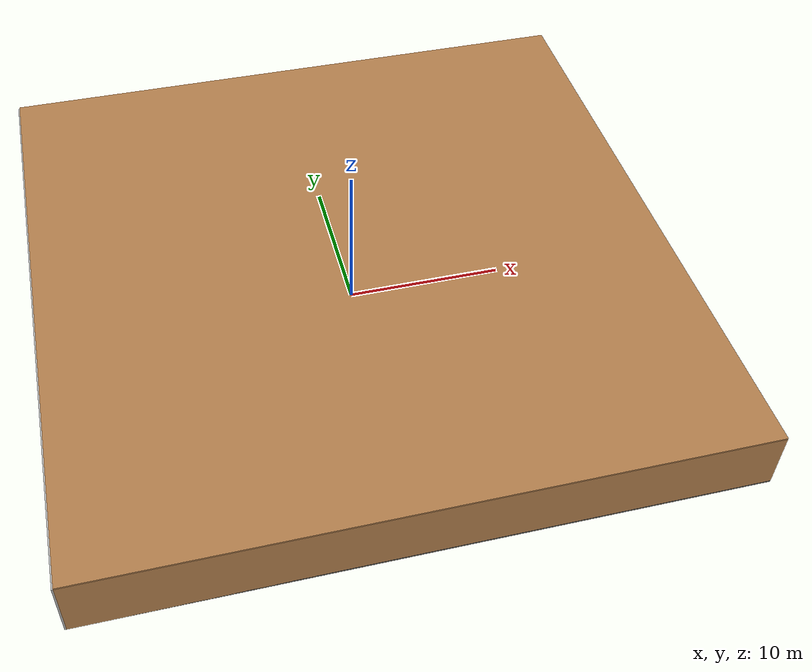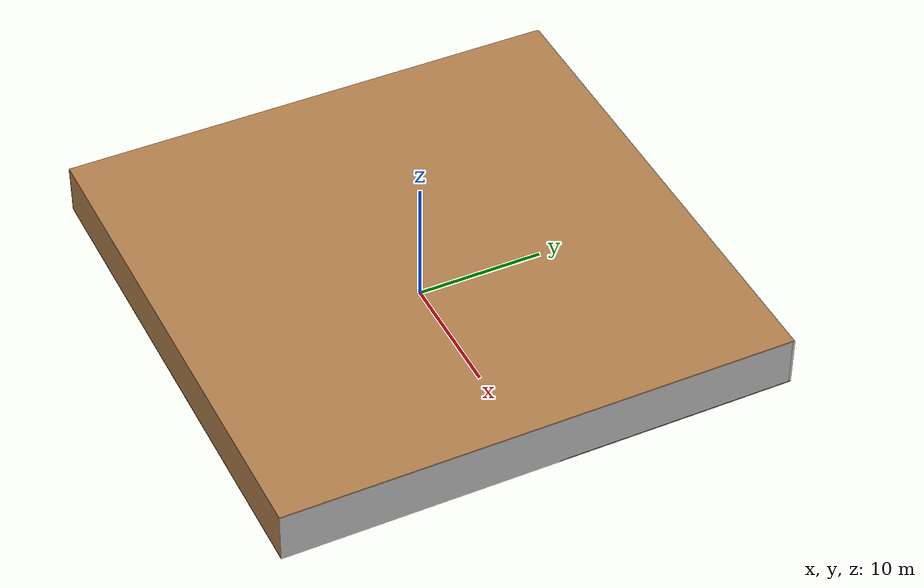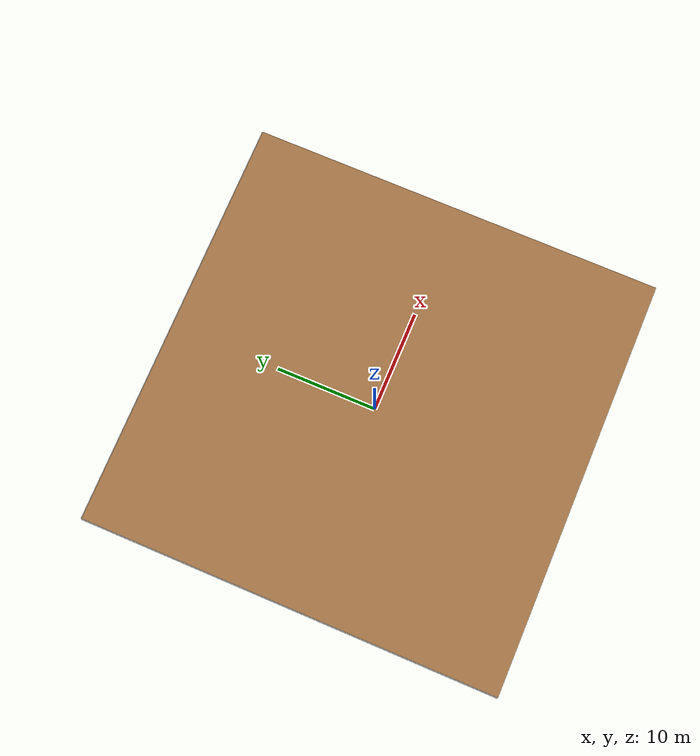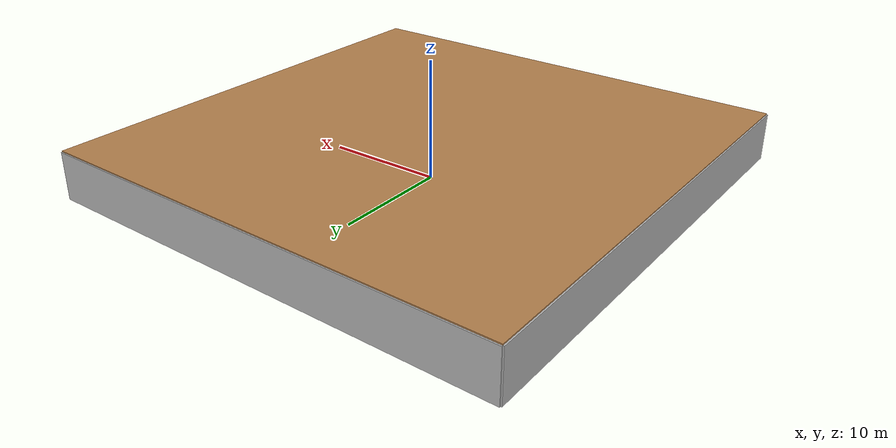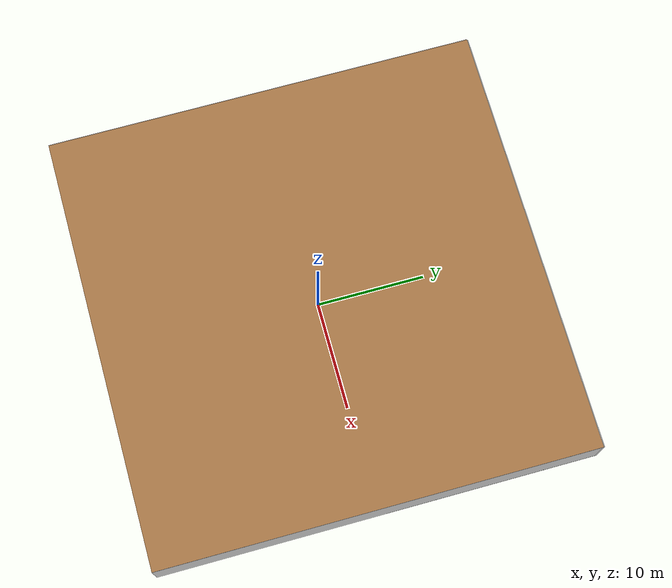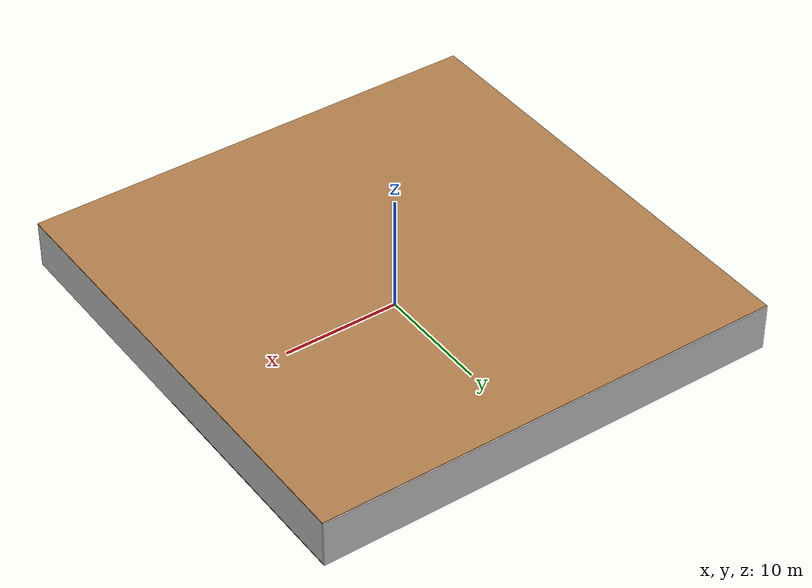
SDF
<sdf version="1.4">
 <world name="default">
  <physics type="ode">
   <max_step_size>0.001</max_step_size>
   <real_time_factor>1</real_time_factor>
   <real_time_update_rate>1000</real_time_update_rate>
   <gravity>0 0 -9.8</gravity>
  </physics>
  <scene><ambient>0.4 0.4 0.4 1</ambient><background>0.7 0.7 0.7 1</background><shadows>1</shadows></scene>
  <model name="Surrounding">
   <static>1</static>
   <link name="Ceiling">
    <collision name="Ceiling_Collision"><geometry><box><size>40 40 0.1</size></box></geometry></collision>
    <visual name="Ceiling_Visual">
     <geometry><box><size>40 40 0.1</size></box></geometry>
     <material>
      <script><uri>file://media/materials/scripts/gazebo.material</uri><name>Gazebo/WoodPallet</name></script>
     </material>
    </visual>
    <pose>0 0 4.05 0 0 0</pose>
   </link>
   <link name="Wall_South">
    <collision name="Wall_South_Collision">
     <geometry><box><size>40 0 4</size></box></geometry>
     <pose>0 0 2 0 -0 0</pose>
    </collision>
    <visual name="Wall_South_Visual">
     <pose>0 0 2 0 -0 0</pose>
     <geometry><box><size>40 0 4</size></box></geometry>
     <material>
      <script><uri>file://media/materials/scripts/gazebo.material</uri><name>Gazebo/WoodPallet</name></script>
     </material>
    </visual>
    <velocity_decay><linear>0</linear><angular>0</angular></velocity_decay>
    <pose>0 -20 0 0 -0 0</pose>
   </link>
   <link name="Wall_East">
    <collision name="Wall_21_Collision">
     <geometry><box><size>40 0 4</size></box></geometry>
     <pose>0 0 2 0 -0 0</pose>
    </collision>
    <visual name="Wall_21_Visual">
     <pose>0 0 2 0 -0 0</pose>
     <geometry><box><size>40 0 4</size></box></geometry>
     <material>
      <script><uri>file://media/materials/scripts/gazebo.material</uri><name>Gazebo/Pioneer2Body</name></script>
     </material>
    </visual>
    <velocity_decay><linear>0</linear><angular>0</angular></velocity_decay>
    <pose>20 0 0 0 -0 1.5708</pose>
   </link>
   <link name="Wall_North">
    <collision name="Wall_22_Collision">
     <geometry><box><size>40 0.2 4</size></box></geometry>
     <pose>0 0 2 0 -0 0</pose>
    </collision>
    <visual name="Wall_22_Visual">
     <pose>0 0 2 0 -0 0</pose>
     <geometry><box><size>40 0.2 4</size></box></geometry>
     <material>
      <script><uri>file://media/materials/scripts/gazebo.material</uri><name>Gazebo/LightOff</name></script>
     </material>
    </visual>
    <velocity_decay><linear>0</linear><angular>0</angular></velocity_decay>
    <pose>0 20 0 0 -0 0</pose>
   </link>
   <link name="Wall_West">
    <collision name="Wall_23_Collision">
     <geometry><box><size>40 0.2 4</size></box></geometry>
     <pose>0 0 2 0 -0 0</pose>
    </collision>
    <visual name="Wall_23_Visual">
     <pose>0 0 2 0 -0 0</pose>
     <geometry><box><size>40 0.2 4</size></box></geometry>
     <material>
      <script><uri>file://media/materials/scripts/gazebo.material</uri><name>Gazebo/LightOff</name></script>
     </material>
    </visual>
    <velocity_decay><linear>0</linear><angular>0</angular></velocity_decay>
    <pose>-20 0 0 0 0 -1.5708</pose>
   </link>
   <link name="Ground_link">
    <collision name="collision">
     <pose>0 0 .05 0 -0 0</pose>
     <geometry><box><size>40 40 0.1</size></box></geometry>
    </collision>
    <visual name="visual">
     <pose>0 0 .05 0 -0 0</pose>
     <geometry><box><size>40 40 0.1</size></box></geometry>
     <material>
      <script><uri>file://media/materials/scripts/gazebo.material</uri><name>Gazebo/Road</name></script>
     </material>
    </visual>
   </link>
   <static>1</static>
  </model>
  <spherical_coordinates>
   <surface_model>EARTH_WGS84</surface_model>
   <latitude_deg>0</latitude_deg>
   <longitude_deg>0</longitude_deg>
   <elevation>0</elevation>
   <heading_deg>0</heading_deg>
  </spherical_coordinates>
  <light name="lightball_0" type="diffuse">
   <diffuse>0.8 0.8 0.8 1</diffuse>
   <specular>0.2 0.2 0.2 1</specular>
   <attenuation>
    <range>100</range>
    <constant>0.7</constant>
    <linear>0.01</linear>
    <quadratic>0.001</quadratic>
   </attenuation>
   <direction>-0.5 0.1 -0.9</direction>
   <pose>13.7362860924 2.438480242 1.98199401209 0 0 0</pose>
  </light>
  <light name="lightball_1" type="diffuse">
   <diffuse>0.8 0.8 0.8 1</diffuse>
   <specular>0.2 0.2 0.2 1</specular>
   <attenuation>
    <range>100</range>
    <constant>0.7</constant>
    <linear>0.01</linear>
    <quadratic>0.001</quadratic>
   </attenuation>
   <direction>-0.5 0.1 -0.9</direction>
   <pose>17.3346230385 -18.2512976138 1.92184270783 0 0 0</pose>
  </light>
  <include><uri>model://table</uri><pose>-13.7797324805 19.2967787378 0 0 0 2.39983224602</pose></include>
  <include><uri>model://cabinet</uri><pose>-11.3679043386 -14.7818977476 0 0 0 1.80688407234</pose></include>
  <include>
   <uri>model://robocup_3Dsim_goal</uri>
   <pose>-8.56909345507 -4.36867207884 0 0 0 2.09779322355</pose>
  </include>
  <include><uri>model://cabinet</uri><pose>-7.43230294368 -0.343106977643 0 0 0 1.02237192218</pose></include>
  <include>
   <uri>model://construction_cone</uri>
   <pose>-7.58914024474 10.6091462127 0 0 0 1.30145496903</pose>
  </include>
  <include><uri>model://cabinet</uri><pose>-7.46205440401 17.3929085109 0 0 0 2.15742592135</pose></include>
  <include>
   <uri>model://construction_cone</uri>
   <pose>-6.6235727073 0.7934853583 0 0 0 2.12858393344</pose>
  </include>
  <include><uri>model://cabinet</uri><pose>-4.62442915855 4.60195639867 0 0 0 2.71167786212</pose></include>
  <include>
   <uri>model://textured_shapes</uri>
   <pose>-5.94890254629 12.6594764534 0 0 0 3.08916086672</pose>
  </include>
  <include>
   <uri>model://textured_shapes</uri>
   <pose>-3.61805097309 13.4796866425 0 0 0 0.337445813497</pose>
  </include>
  <include><uri>model://cabinet</uri><pose>-2.46843265036 17.9930644091 0 0 0 0.016889917414</pose></include>
  <include>
   <uri>model://robocup_3Dsim_goal</uri>
   <pose>0.0186078564937 -18.6516064076 0 0 0 1.07969239586</pose>
  </include>
  <include><uri>model://table</uri><pose>1.60749969463 -12.5823826139 0 0 0 1.95510751022</pose></include>
  <include>
   <uri>model://construction_cone</uri>
   <pose>0.538064228723 -5.77763878847 0 0 0 2.94269340269</pose>
  </include>
  <include><uri>model://cabinet</uri><pose>1.29490853367 14.5928461806 0 0 0 0.0489377224463</pose></include>
  <include>
   <uri>model://construction_cone</uri>
   <pose>2.34933445565 8.73137225546 0 0 0 2.29549870442</pose>
  </include>
  <include>
   <uri>model://robocup_3Dsim_goal</uri>
   <pose>7.69046050086 -5.99850102706 0 0 0 0.538223012101</pose>
  </include>
  <include><uri>model://table</uri><pose>7.37088615904 -3.28169884888 0 0 0 1.05623631184</pose></include>
  <include><uri>model://cabinet</uri><pose>8.64914723619 6.83378427899 0 0 0 0.922336224399</pose></include>
  <include>
   <uri>model://construction_cone</uri>
   <pose>15.1387512926 -4.90210265031 0 0 0 1.91990058914</pose>
  </include>
  <include>
   <uri>model://robocup_3Dsim_goal</uri>
   <pose>18.2639037612 -16.6835143359 0 0 0 1.00711219207</pose>
  </include>
  <include><uri>model://cabinet</uri><pose>17.9796559524 4.22796409295 0 0 0 2.26400450582</pose></include>
 </world>
</sdf>

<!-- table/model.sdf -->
<sdf version="1.5">
  <model name="table">
    <static>true</static>
    <link name="link">
      <collision name="surface">
        <pose>0 0 1.0 0 0 0</pose>
        <geometry>
          <box>
            <size>1.5 0.8 0.03</size>
          </box>
        </geometry>
        <surface>
          <friction>
            <ode>
              <mu>0.6</mu>
              <mu2>0.6</mu2>
            </ode>
          </friction>
        </surface>
      </collision>
      <visual name="visual1">
        <pose>0 0 1.0 0 0 0</pose>
        <geometry>
          <box>
            <size>1.5 0.8 0.03</size>
          </box>
        </geometry>
        <material>
          <script>
            <uri>model://media/materials/scripts/gazebo.material</uri>
            <name>Gazebo/Wood</name>
          </script>
        </material>
      </visual>
      <collision name="front_left_leg">
        <pose>0.68 0.38 0.5 0 0 0</pose>
        <geometry>
          <cylinder>
            <radius>0.02</radius>
            <length>1.0</length>
          </cylinder>
        </geometry>
      </collision>
      <visual name="front_left_leg">
        <pose>0.68 0.38 0.5 0 0 0</pose>
        <geometry>
          <cylinder>
            <radius>0.02</radius>
            <length>1.0</length>
          </cylinder>
        </geometry>
        <material>
          <script>
            <uri>model://media/materials/scripts/gazebo.material</uri>
            <name>Gazebo/Grey</name>
          </script>
        </material>
      </visual>
      <collision name="front_right_leg">
        <pose>0.68 -0.38 0.5 0 0 0</pose>
        <geometry>
          <cylinder>
            <radius>0.02</radius>
            <length>1.0</length>
          </cylinder>
        </geometry>
      </collision>
      <visual name="front_right_leg">
        <pose>0.68 -0.38 0.5 0 0 0</pose>
        <geometry>
          <cylinder>
            <radius>0.02</radius>
            <length>1.0</length>
          </cylinder>
        </geometry>
        <material>
          <script>
            <uri>model://media/materials/scripts/gazebo.material</uri>
            <name>Gazebo/Grey</name>
          </script>
        </material>
      </visual>
      <collision name="back_right_leg">
        <pose>-0.68 -0.38 0.5 0 0 0</pose>
        <geometry>
          <cylinder>
            <radius>0.02</radius>
            <length>1.0</length>
          </cylinder>
        </geometry>
      </collision>
      <visual name="back_right_leg">
        <pose>-0.68 -0.38 0.5 0 0 0</pose>
        <geometry>
          <cylinder>
            <radius>0.02</radius>
            <length>1.0</length>
          </cylinder>
        </geometry>
        <material>
          <script>
            <uri>model://media/materials/scripts/gazebo.material</uri>
            <name>Gazebo/Grey</name>
          </script>
        </material>
      </visual>
      <collision name="back_left_leg">
        <pose>-0.68 0.38 0.5 0 0 0</pose>
        <geometry>
          <cylinder>
            <radius>0.02</radius>
            <length>1.0</length>
          </cylinder>
        </geometry>
      </collision>
      <visual name="back_left_leg">
        <pose>-0.68 0.38 0.5 0 0 0</pose>
        <geometry>
          <cylinder>
            <radius>0.02</radius>
            <length>1.0</length>
          </cylinder>
        </geometry>
        <material>
          <script>
            <uri>model://media/materials/scripts/gazebo.material</uri>
            <name>Gazebo/Grey</name>
          </script>
        </material>
      </visual>
    </link>
  </model>
</sdf>

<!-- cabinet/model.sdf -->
<sdf version="1.5">
  <model name="cabinet">
    <static>true</static>
    <link name="cabinet_bottom_plate">
      <inertial>
        <pose>0 0 -1 0 0 0</pose>
        <inertia>
          <ixx>2.050000</ixx>
          <ixy>0</ixy>
          <ixz>0</ixz>
          <iyy>2.050000</iyy>
          <iyz>0</iyz>
          <izz>2.050000</izz>
        </inertia>
        <mass>25.000000</mass>
      </inertial>
      <collision name="cabinet_bottom_plate_geom">
        <pose>0 0 0.010000 0 0 0</pose>
        <geometry>
          <box>
            <size>0.450000 0.450000 0.020000</size>
          </box>
        </geometry>
      </collision>
      <visual name="cabinet_bottom_plate_geom_visual">
        <pose>0 0 0.010000 0 0 0</pose>
        <geometry>
          <box>
            <size>0.450000 0.450000 0.020000</size>
          </box>
        </geometry>
        <material>
          <script>
            <uri>model://media/materials/scripts/gazebo.material</uri>
            <name>Gazebo/Wood</name>
          </script>
        </material>
      </visual>
      <collision name="cabinet_bottom_plate_geom_cabinet_back_plate">
        <pose>0.235000 0 0.510000 0 0 0</pose>
        <geometry>
          <box>
            <size>0.020000 0.450000 1.020000</size>
          </box>
        </geometry>
      </collision>
      <visual name="cabinet_bottom_plate_geom_cabinet_back_plate_visual">
        <pose>0.235000 0 0.510000 0 0 0</pose>
        <geometry>
          <box>
            <size>0.020000 0.450000 1.020000</size>
          </box>
        </geometry>
        <material>
          <script>
            <uri>model://media/materials/scripts/gazebo.material</uri>
            <name>Gazebo/Wood</name>
          </script>
        </material>
      </visual>
      <collision name="cabinet_bottom_plate_geom_cabinet_left_plate">
        <pose>0 0.235000 0.510000 0 0 0</pose>
        <geometry>
          <box>
            <size>0.450000 0.020000 1.020000</size>
          </box>
        </geometry>
      </collision>
      <visual name="cabinet_bottom_plate_geom_cabinet_left_plate_visual">
        <pose>0 0.235000 0.510000 0 0 0</pose>
        <geometry>
          <box>
            <size>0.450000 0.020000 1.020000</size>
          </box>
        </geometry>
        <material>
          <script>
            <uri>model://media/materials/scripts/gazebo.material</uri>
            <name>Gazebo/Wood</name>
          </script>
        </material>
      </visual>
      <collision name="cabinet_bottom_plate_geom_cabinet_middle_plate">
        <pose>0 0 0.510000 0 0 0</pose>
        <geometry>
          <box>
            <size>0.450000 0.450000 0.020000</size>
          </box>
        </geometry>
      </collision>
      <visual name="cabinet_bottom_plate_geom_cabinet_middle_plate_visual">
        <pose>0 0 0.510000 0 0 0</pose>
        <geometry>
          <box>
            <size>0.450000 0.450000 0.020000</size>
          </box>
        </geometry>
        <material>
          <script>
            <uri>model://media/materials/scripts/gazebo.material</uri>
            <name>Gazebo/Wood</name>
          </script>
        </material>
      </visual>
      <collision name="cabinet_bottom_plate_geom_cabinet_right_plate">
        <pose>0 -0.235000 0.510000 0 0 0</pose>
        <geometry>
          <box>
            <size>0.450000 0.020000 1.020000</size>
          </box>
        </geometry>
      </collision>
      <visual name="cabinet_bottom_plate_geom_cabinet_right_plate_visual">
        <pose>0 -0.235000 0.510000 0 0 0</pose>
        <geometry>
          <box>
            <size>0.450000 0.020000 1.020000</size>
          </box>
        </geometry>
        <material>
          <script>
            <uri>model://media/materials/scripts/gazebo.material</uri>
            <name>Gazebo/Wood</name>
          </script>
        </material>
      </visual>
      <collision name="cabinet_bottom_plate_geom_cabinet_top_plate">
        <pose>0 0 1.010000 0 0 0</pose>
        <geometry>
          <box>
            <size>0.450000 0.450000 0.020000</size>
          </box>
        </geometry>
      </collision>
      <visual name="cabinet_bottom_plate_geom_cabinet_top_plate_visual">
        <pose>0 0 1.010000 0 0 0</pose>
        <geometry>
          <box>
            <size>0.450000 0.450000 0.020000</size>
          </box>
        </geometry>
        <material>
          <script>
            <uri>model://media/materials/scripts/gazebo.material</uri>
            <name>Gazebo/Wood</name>
          </script>
        </material>
      </visual>
    </link>
  </model>
</sdf>

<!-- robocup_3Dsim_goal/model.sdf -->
<sdf version="1.5">
  <model name="robocup_3d_goal">
    <static>true</static>
    <link name="left_post">
      <pose>0 1.05 0.45 0 0 0</pose>
      <collision name="collision">
        <geometry>
          <cylinder>
            <radius>0.05</radius>
            <length>0.9</length>
          </cylinder>
        </geometry>
      </collision>
      <visual name="visual">
        <geometry>
          <cylinder>
            <radius>0.05</radius>
            <length>0.9</length>
          </cylinder>
        </geometry>
        <material>
          <script>
            <uri>file://media/materials/scripts/gazebo.material</uri>
            <name>Gazebo/ZincYellow</name>
          </script>
        </material>
      </visual>
    </link>
    <link name="left_support_horiz_lower">
      <pose>0.30 1.05 0.01 0 0 0</pose>
      <collision name="collision">
        <geometry>
          <box>
            <size>0.50 0.02 0.02</size>
          </box>
        </geometry>
      </collision>
      <visual name="visual">
        <geometry>
          <box>
            <size>0.50 0.02 0.02</size>
          </box>
        </geometry>
        <material>
          <script>
            <uri>file://media/materials/scripts/gazebo.material</uri>
            <name>Gazebo/White</name>
          </script>
        </material>
      </visual>
    </link>
    <link name="left_support_horiz_upper">
      <pose>0.30 1.05 0.79 0 0 0</pose>
      <collision name="collision">
        <geometry>
          <box>
            <size>0.50 0.02 0.02</size>
          </box>
        </geometry>
      </collision>
      <visual name="visual">
        <geometry>
          <box>
            <size>0.50 0.02 0.02</size>
          </box>
        </geometry>
        <material>
          <script>
            <uri>file://media/materials/scripts/gazebo.material</uri>
            <name>Gazebo/White</name>
          </script>
        </material>
      </visual>
    </link>
    <link name="left_support_vertical">
      <pose>0.56 1.05 0.4 0 1.5708 0</pose>
      <collision name="collision">
        <geometry>
          <box>
            <size>0.80 0.02 0.02</size>
          </box>
        </geometry>
      </collision>
      <visual name="visual">
        <geometry>
          <box>
            <size>0.80 0.02 0.02</size>
          </box>
        </geometry>
        <material>
          <script>
            <uri>file://media/materials/scripts/gazebo.material</uri>
            <name>Gazebo/White</name>
          </script>
        </material>
      </visual>
    </link>
    <link name="right_support_horiz_lower">
      <pose>0.30 -1.05 0.01 0 0 0</pose>
      <collision name="collision">
        <geometry>
          <box>
            <size>0.50 0.02 0.02</size>
          </box>
        </geometry>
      </collision>
      <visual name="visual">
        <geometry>
          <box>
            <size>0.50 0.02 0.02</size>
          </box>
        </geometry>
        <material>
          <script>
            <uri>file://media/materials/scripts/gazebo.material</uri>
            <name>Gazebo/White</name>
          </script>
        </material>
      </visual>
    </link>
    <link name="right_support_horiz_upper">
      <pose>0.30 -1.05 0.79 0 0 0</pose>
      <collision name="collision">
        <geometry>
          <box>
            <size>0.50 0.02 0.02</size>
          </box>
        </geometry>
      </collision>
      <visual name="visual">
        <geometry>
          <box>
            <size>0.50 0.02 0.02</size>
          </box>
        </geometry>
        <material>
          <script>
            <uri>file://media/materials/scripts/gazebo.material</uri>
            <name>Gazebo/White</name>
          </script>
        </material>
      </visual>
    </link>
    <link name="right_support_vertical">
      <pose>0.56 -1.05 0.4 0 1.5708 0</pose>
      <collision name="collision">
        <geometry>
          <box>
            <size>0.80 0.02 0.02</size>
          </box>
        </geometry>
      </collision>
      <visual name="visual">
        <geometry>
          <box>
            <size>0.80 0.02 0.02</size>
          </box>
        </geometry>
        <material>
          <script>
            <uri>file://media/materials/scripts/gazebo.material</uri>
            <name>Gazebo/White</name>
          </script>
        </material>
      </visual>
    </link>
    <link name="center_support_horiz_lower">
      <pose>0.56 0 0.01 0 1.5708 0</pose>
      <collision name="collision">
        <geometry>
          <box>
            <size>0.02 2.08 0.02</size>
          </box>
        </geometry>
      </collision>
      <visual name="visual">
        <geometry>
          <box>
            <size>0.02 2.08 0.02</size>
          </box>
        </geometry>
        <material>
          <script>
            <uri>file://media/materials/scripts/gazebo.material</uri>
            <name>Gazebo/White</name>
          </script>
        </material>
      </visual>
    </link>
    <link name="center_support_horiz_upper">
      <pose>0.56 0 0.79 0 1.5708 0</pose>
      <collision name="collision">
        <geometry>
          <box>
            <size>0.02 2.08 0.02</size>
          </box>
        </geometry>
      </collision>
      <visual name="visual">
        <geometry>
          <box>
            <size>0.02 2.08 0.02</size>
          </box>
        </geometry>
        <material>
          <script>
            <uri>file://media/materials/scripts/gazebo.material</uri>
            <name>Gazebo/White</name>
          </script>
        </material>
      </visual>
    </link>
    <link name="right_post">
      <pose>0 -1.05 0.45 0 0 0</pose>
      <collision name="collision">
        <geometry>
          <cylinder>
            <radius>0.05</radius>
            <length>0.9</length>
          </cylinder>
        </geometry>
      </collision>
      <visual name="visual">
        <geometry>
          <cylinder>
            <radius>0.05</radius>
            <length>0.9</length>
          </cylinder>
        </geometry>
        <material>
          <script>
            <uri>file://media/materials/scripts/gazebo.material</uri>
            <name>Gazebo/ZincYellow</name>
          </script>
        </material>
      </visual>
    </link>
    <link name="crossbar">
      <pose>0 0 0.85 1.57 1.57 0</pose>
      <collision name="collision">
        <geometry>
          <cylinder>
            <radius>0.05</radius>
            <length>2.0</length>
          </cylinder>
        </geometry>
      </collision>
      <visual name="visual">
        <geometry>
          <cylinder>
            <radius>0.05</radius>
            <length>2.0</length>
          </cylinder>
        </geometry>
        <material>
          <script>
            <uri>file://media/materials/scripts/gazebo.material</uri>
            <name>Gazebo/ZincYellow</name>
          </script>
        </material>
      </visual>
    </link>
    <link name="center_net">
      <pose>0.56 0 0.40 0 0 0</pose>
      <collision name="collision">
        <geometry>
          <box>
            <size>0.01 2.1 0.80</size>
          </box>
        </geometry>
      </collision>
      <visual name="visual">
        <geometry>
          <box>
            <size>0.01 2.1 0.80</size>
          </box>
        </geometry>
        <material>
          <script>
            <uri>model://../model_source/models/robocup09_spl_field/materials/scripts/</uri>
            <uri>model://../model_source/models/robocup09_spl_field/materials/textures/</uri>
            <name>RoboCup/Net</name>
          </script>
        </material>
      </visual>
    </link>
    <link name="left_net">
      <pose>0.30 1.05 0.40 0 0 0</pose>
      <collision name="collision">
        <geometry>
          <box>
            <size>0.50 0.01 0.76</size>
          </box>
        </geometry>
      </collision>
      <visual name="visual">
        <geometry>
          <box>
            <size>0.50 0.01 0.76</size>
          </box>
        </geometry>
        <material>
          <script>
            <uri>model://../model_source/models/robocup09_spl_field/materials/scripts/</uri>
            <uri>model://../model_source/models/robocup09_spl_field/materials/textures/</uri>
            <name>RoboCup/Net</name>
          </script>
        </material>
      </visual>
    </link>
    <link name="right_net">
      <pose>0.30 -1.05 0.40 0 0 0</pose>
      <collision name="collision">
        <geometry>
          <box>
            <size>0.50 0.01 0.76</size>
          </box>
        </geometry>
      </collision>
      <visual name="visual">
        <geometry>
          <box>
            <size>0.50 0.01 0.76</size>
          </box>
        </geometry>
        <material>
          <script>
            <uri>model://../model_source/models/robocup09_spl_field/materials/scripts/</uri>
            <uri>model://../model_source/models/robocup09_spl_field/materials/textures/</uri>
            <name>RoboCup/Net</name>
          </script>
        </material>
      </visual>
    </link>
  </model>
</sdf>

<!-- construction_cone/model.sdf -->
<sdf version="1.5">
  <model name="Construction Cone">
    <link name="link">
      <collision name="collision">
        <geometry>
          <mesh>
            <scale>10 10 10</scale>
            <uri>file://isr-testbed/construction_cone/meshes/construction_cone.dae</uri>
          </mesh>
        </geometry>
      </collision>
      <visual name="visual">
        <geometry>
          <mesh>
            <scale>10 10 10</scale>
            <uri>file://isr-testbed/construction_cone/meshes/construction_cone.dae</uri>
          </mesh>
        </geometry>
      </visual>
    </link>
  </model>
</sdf>

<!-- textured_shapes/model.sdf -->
<sdf version="1.6">
  <model name="textured_shapes">
    <pose>0 0 0.5 0 0 0</pose>
    <link name="box">
      <pose>0 -1.5 0 0 0 0</pose>
      <collision name="collision">
        <geometry>
          <box>
            <size>1 1 1</size>
          </box>
        </geometry>
      </collision>
      <visual name="visual">
        <geometry>
          <box>
            <size>1 1 1</size>
          </box>
        </geometry>
        <material>
          <script>
            <uri>model://../model_source/models/textured_shapes/materials/scripts</uri>
            <uri>model://../model_source/models/textured_shapes/materials/textures</uri>
            <name>TexturedShape/Squares</name>
          </script>
        </material>
      </visual>
    </link>
    <link name="sphere">
      <collision name="collision">
        <geometry>
          <sphere>
            <radius>0.5</radius>
          </sphere>
        </geometry>
      </collision>
      <visual name="visual">
        <geometry>
          <sphere>
            <radius>0.5</radius>
          </sphere>
        </geometry>
        <material>
          <script>
            <uri>model://../model_source/models/textured_shapes/materials/scripts</uri>
            <uri>model://../model_source/models/textured_shapes/materials/textures</uri>
            <name>TexturedShape/Squares</name>
          </script>
        </material>
      </visual>
    </link>
    <link name="cylinder">
      <pose>0 1.5 0 0 0 0</pose>
      <collision name="collision">
        <geometry>
          <cylinder>
            <radius>0.5</radius>
            <length>1</length>
          </cylinder>
        </geometry>
      </collision>
      <visual name="visual">
        <geometry>
          <cylinder>
            <radius>0.5</radius>
            <length>1</length>
          </cylinder>
        </geometry>
        <material>
          <script>
            <uri>model://../model_source/models/textured_shapes/materials/scripts</uri>
            <uri>model://../model_source/models/textured_shapes/materials/textures</uri>
            <name>TexturedShape/Squares</name>
          </script>
        </material>
      </visual>
    </link>
  </model>
</sdf>
